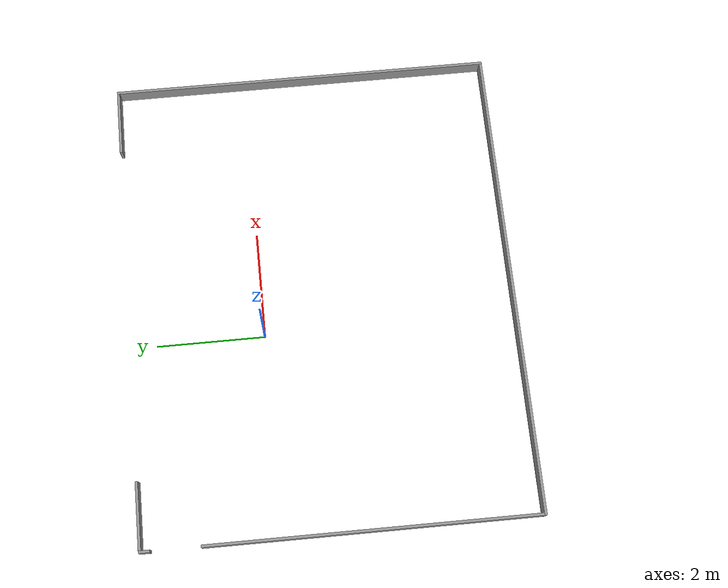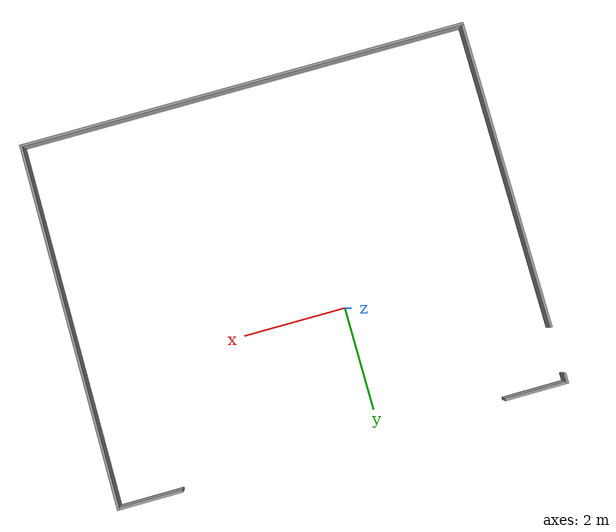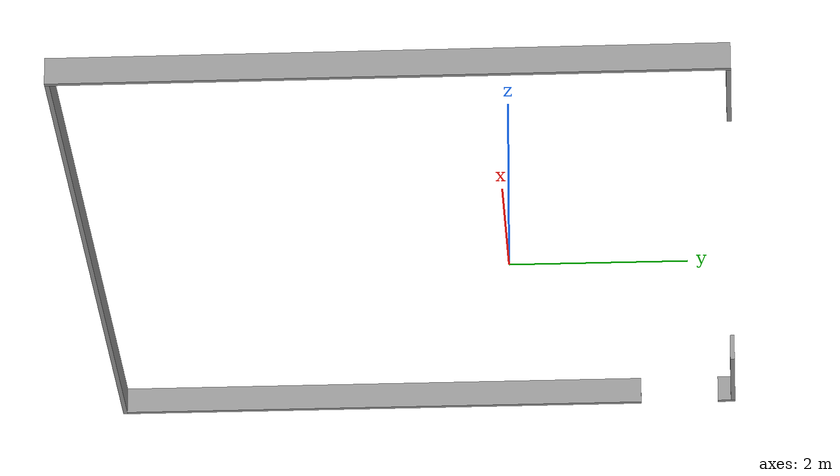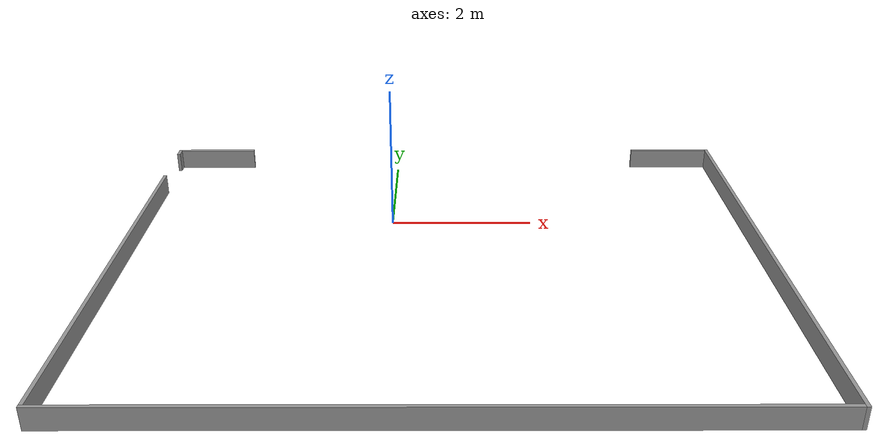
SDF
<?xml version='1.0'?>
<sdf version='1.7'>
  <model name='2F_wall'>
    <link name='link_0'>
      <inertial>
        <mass>1</mass>
        <inertia>
          <ixx>0.166667</ixx>
          <ixy>0</ixy>
          <ixz>0</ixz>
          <iyy>0.166667</iyy>
          <iyz>0</iyz>
          <izz>0.166667</izz>
        </inertia>
        <pose>0 0 0 0 -0 0</pose>
      </inertial>
      <pose>-3.039 2.48333 0 0 -0 0</pose>
      <gravity>0</gravity>
      <self_collide>0</self_collide>
      <kinematic>0</kinematic>
      <enable_wind>0</enable_wind>
      <visual name='visual'>
        <pose>0 0 0 0 -0 0</pose>
        <geometry>
          <box>
            <size>1.2 0.05 0.3</size>
          </box>
        </geometry>
        <material>
          <lighting>1</lighting>
          <script>
            <uri>file://media/materials/scripts/gazebo.material</uri>
            <name>Gazebo/Grey</name>
          </script>
          <shader type='pixel'>
            <normal_map>__default__</normal_map>
          </shader>
          <ambient>0.3 0.3 0.3 1</ambient>
          <diffuse>0.7 0.7 0.7 1</diffuse>
          <specular>0.01 0.01 0.01 1</specular>
          <emissive>0 0 0 1</emissive>
        </material>
        <transparency>0</transparency>
        <cast_shadows>1</cast_shadows>
      </visual>
    </link>
    <link name='link_1'>
      <inertial>
        <mass>1</mass>
        <inertia>
          <ixx>0.166667</ixx>
          <ixy>0</ixy>
          <ixz>0</ixz>
          <iyy>0.166667</iyy>
          <iyz>0</iyz>
          <izz>0.166667</izz>
        </inertia>
        <pose>0 0 0 0 -0 0</pose>
      </inertial>
      <pose>-3.664 2.40833 0 0 -0 0</pose>
      <gravity>0</gravity>
      <self_collide>0</self_collide>
      <kinematic>0</kinematic>
      <enable_wind>0</enable_wind>
      <visual name='visual'>
        <pose>0 0 0 0 -0 0</pose>
        <geometry>
          <box>
            <size>0.05 0.2 0.3</size>
          </box>
        </geometry>
        <material>
          <lighting>1</lighting>
          <script>
            <uri>file://media/materials/scripts/gazebo.material</uri>
            <name>Gazebo/Grey</name>
          </script>
          <shader type='pixel'>
            <normal_map>__default__</normal_map>
          </shader>
          <ambient>0.3 0.3 0.3 1</ambient>
          <diffuse>0.7 0.7 0.7 1</diffuse>
          <specular>0.01 0.01 0.01 1</specular>
          <emissive>0 0 0 1</emissive>
        </material>
        <transparency>0</transparency>
        <cast_shadows>1</cast_shadows>
      </visual>
    </link>
    <link name='link_2'>
      <inertial>
        <mass>1</mass>
        <inertia>
          <ixx>0.166667</ixx>
          <ixy>0</ixy>
          <ixz>0</ixz>
          <iyy>0.166667</iyy>
          <iyz>0</iyz>
          <izz>0.166667</izz>
        </inertia>
        <pose>0 0 0 0 -0 0</pose>
      </inertial>
      <pose>-3.664 -1.61667 0 0 -0 0</pose>
      <gravity>0</gravity>
      <self_collide>0</self_collide>
      <kinematic>0</kinematic>
      <enable_wind>0</enable_wind>
      <visual name='visual'>
        <pose>0 0 0 0 -0 0</pose>
        <geometry>
          <box>
            <size>0.05 6.05 0.3</size>
          </box>
        </geometry>
        <material>
          <lighting>1</lighting>
          <script>
            <uri>file://media/materials/scripts/gazebo.material</uri>
            <name>Gazebo/Grey</name>
          </script>
          <shader type='pixel'>
            <normal_map>__default__</normal_map>
          </shader>
          <ambient>0.3 0.3 0.3 1</ambient>
          <diffuse>0.7 0.7 0.7 1</diffuse>
          <specular>0.01 0.01 0.01 1</specular>
          <emissive>0 0 0 1</emissive>
        </material>
        <transparency>0</transparency>
        <cast_shadows>1</cast_shadows>
      </visual>
    </link>
    <link name='link_6'>
      <inertial>
        <mass>1</mass>
        <inertia>
          <ixx>0.166667</ixx>
          <ixy>0</ixy>
          <ixz>0</ixz>
          <iyy>0.166667</iyy>
          <iyz>0</iyz>
          <izz>0.166667</izz>
        </inertia>
        <pose>0 0 0 0 -0 0</pose>
      </inertial>
      <pose>0.716 -4.66667 0 0 -0 0</pose>
      <gravity>0</gravity>
      <self_collide>0</self_collide>
      <kinematic>0</kinematic>
      <enable_wind>0</enable_wind>
      <visual name='visual'>
        <pose>0 0 0 0 -0 0</pose>
        <geometry>
          <box>
            <size>8.81 0.05 0.3</size>
          </box>
        </geometry>
        <material>
          <lighting>1</lighting>
          <script>
            <uri>file://media/materials/scripts/gazebo.material</uri>
            <name>Gazebo/Grey</name>
          </script>
          <shader type='pixel'>
            <normal_map>__default__</normal_map>
          </shader>
          <ambient>0.3 0.3 0.3 1</ambient>
          <diffuse>0.7 0.7 0.7 1</diffuse>
          <specular>0.01 0.01 0.01 1</specular>
          <emissive>0 0 0 1</emissive>
        </material>
        <transparency>0</transparency>
        <cast_shadows>1</cast_shadows>
      </visual>
    </link>
    <link name='link_7'>
      <inertial>
        <mass>1</mass>
        <inertia>
          <ixx>0.166667</ixx>
          <ixy>0</ixy>
          <ixz>0</ixz>
          <iyy>0.166667</iyy>
          <iyz>0</iyz>
          <izz>0.166667</izz>
        </inertia>
        <pose>0 0 0 0 -0 0</pose>
      </inertial>
      <pose>5.146 -1.09167 0 0 -0 0</pose>
      <gravity>0</gravity>
      <self_collide>0</self_collide>
      <kinematic>0</kinematic>
      <enable_wind>0</enable_wind>
      <visual name='visual'>
        <pose>0 0 0 0 -0 0</pose>
        <geometry>
          <box>
            <size>0.05 7.2 0.3</size>
          </box>
        </geometry>
        <material>
          <lighting>1</lighting>
          <script>
            <uri>file://media/materials/scripts/gazebo.material</uri>
            <name>Gazebo/Grey</name>
          </script>
          <shader type='pixel'>
            <normal_map>__default__</normal_map>
          </shader>
          <ambient>0.3 0.3 0.3 1</ambient>
          <diffuse>0.7 0.7 0.7 1</diffuse>
          <specular>0.01 0.01 0.01 1</specular>
          <emissive>0 0 0 1</emissive>
        </material>
        <transparency>0</transparency>
        <cast_shadows>1</cast_shadows>
      </visual>
    </link>
    <link name='link_8'>
      <inertial>
        <mass>1</mass>
        <inertia>
          <ixx>0.166667</ixx>
          <ixy>0</ixy>
          <ixz>0</ixz>
          <iyy>0.166667</iyy>
          <iyz>0</iyz>
          <izz>0.166667</izz>
        </inertia>
        <pose>0 0 0 0 -0 0</pose>
      </inertial>
      <pose>4.505 2.48333 0 0 -0 0</pose>
      <gravity>0</gravity>
      <self_collide>0</self_collide>
      <kinematic>0</kinematic>
      <enable_wind>0</enable_wind>
      <visual name='visual'>
        <pose>0 0 0 0 -0 0</pose>
        <geometry>
          <box>
            <size>1.232 0.05 0.3</size>
          </box>
        </geometry>
        <material>
          <lighting>1</lighting>
          <script>
            <uri>file://media/materials/scripts/gazebo.material</uri>
            <name>Gazebo/Grey</name>
          </script>
          <shader type='pixel'>
            <normal_map>__default__</normal_map>
          </shader>
          <ambient>0.3 0.3 0.3 1</ambient>
          <diffuse>0.7 0.7 0.7 1</diffuse>
          <specular>0.01 0.01 0.01 1</specular>
          <emissive>0 0 0 1</emissive>
        </material>
        <transparency>0</transparency>
        <cast_shadows>1</cast_shadows>
      </visual>
    </link>
    <static>0</static>
    <allow_auto_disable>1</allow_auto_disable>
  </model>
</sdf>
